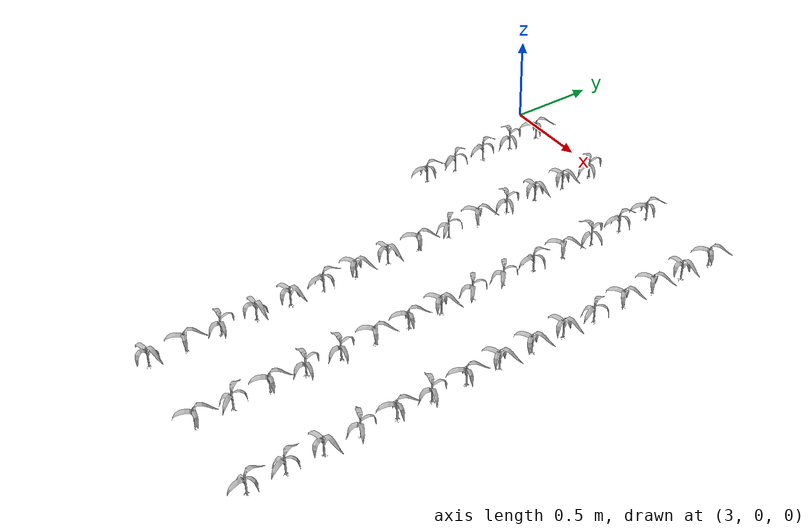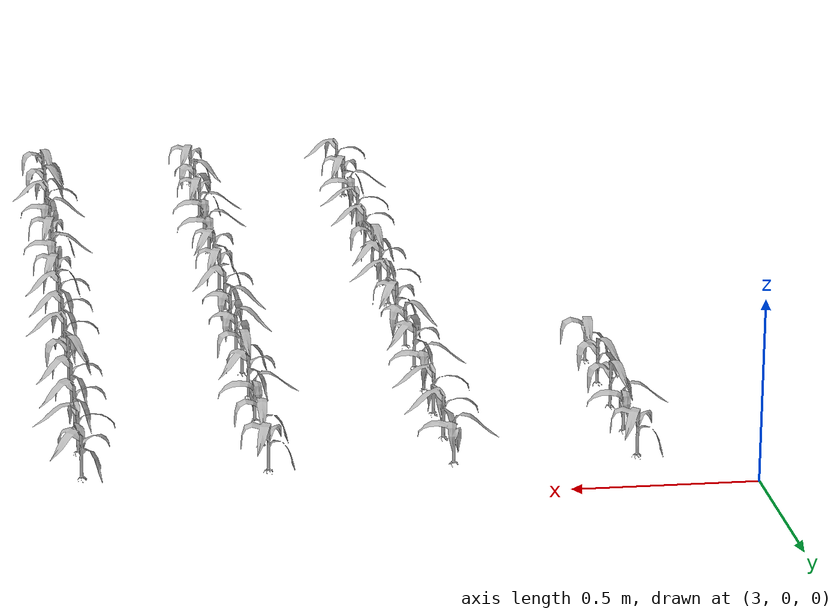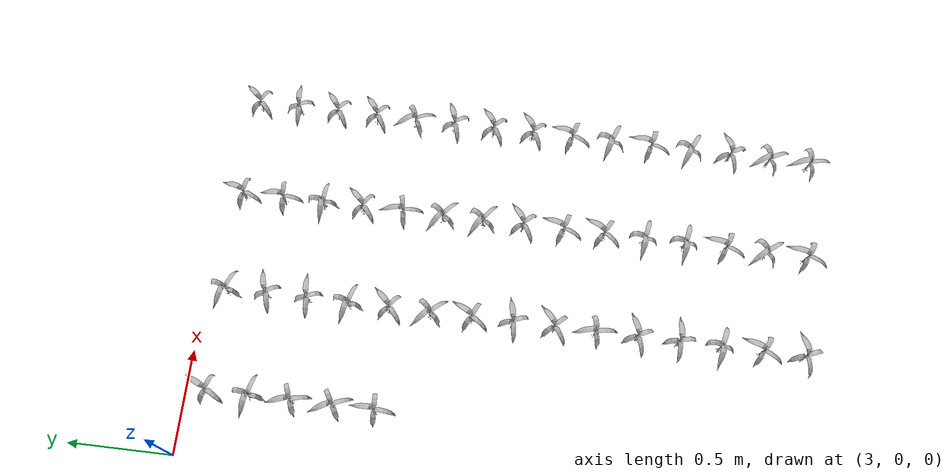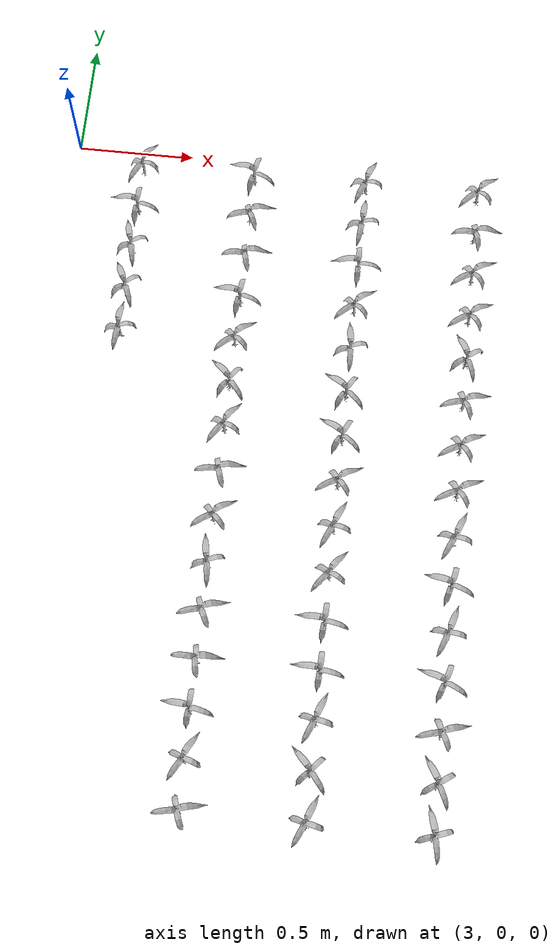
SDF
<sdf version="1.7">
 <world name="default">
  <model name="maize_3.304538114598593_-0.8999999999999995">
   <static>1</static>
   <link name="link">
    <inertial>
     <mass>0.2</mass>
     <inertia>
      <ixx>0.166667</ixx>
      <ixy>0</ixy>
      <ixz>0</ixz>
      <iyy>0.166667</iyy>
      <iyz>0</iyz>
      <izz>0.166667</izz>
     </inertia>
    </inertial>
    <collision name="collision">
     <geometry><mesh><uri>model://corn_3/meshes/corn.dae</uri><scale>0.25 0.25 0.25</scale></mesh></geometry>
     <surface>
      <friction><ode><mu>0</mu><mu2>0</mu2></ode></friction>
      <contact><ode><kp>0</kp><kd>0</kd><max_vel>0</max_vel><min_depth>0.002</min_depth></ode></contact>
     </surface>
    </collision>
    <visual name="visual">
     <geometry><mesh><uri>model://corn_3/meshes/corn.dae</uri><scale>0.25 0.25 0.25</scale></mesh></geometry>
    </visual>
    <velocity_decay><linear>0</linear><angular>0</angular></velocity_decay>
   </link>
   <pose>3.30454 -0.9 0.05 0 -0 1.55204</pose>
  </model>
  <model name="maize_3.304538114598593_-0.7050000000000001">
   <static>1</static>
   <link name="link">
    <inertial>
     <mass>0.2</mass>
     <inertia>
      <ixx>0.166667</ixx>
      <ixy>0</ixy>
      <ixz>0</ixz>
      <iyy>0.166667</iyy>
      <iyz>0</iyz>
      <izz>0.166667</izz>
     </inertia>
    </inertial>
    <collision name="collision">
     <geometry><mesh><uri>model://corn_3/meshes/corn.dae</uri><scale>0.25 0.25 0.25</scale></mesh></geometry>
     <surface>
      <friction><ode><mu>0</mu><mu2>0</mu2></ode></friction>
      <contact><ode><kp>0</kp><kd>0</kd><max_vel>0</max_vel><min_depth>0.002</min_depth></ode></contact>
     </surface>
    </collision>
    <visual name="visual">
     <geometry><mesh><uri>model://corn_3/meshes/corn.dae</uri><scale>0.25 0.25 0.25</scale></mesh></geometry>
    </visual>
    <velocity_decay><linear>0</linear><angular>0</angular></velocity_decay>
   </link>
   <pose>3.30454 -0.705 0.05 0 -0 2.03762</pose>
  </model>
  <model name="maize_3.304538114598593_-0.5099999999999998">
   <static>1</static>
   <link name="link">
    <inertial>
     <mass>0.2</mass>
     <inertia>
      <ixx>0.166667</ixx>
      <ixy>0</ixy>
      <ixz>0</ixz>
      <iyy>0.166667</iyy>
      <iyz>0</iyz>
      <izz>0.166667</izz>
     </inertia>
    </inertial>
    <collision name="collision">
     <geometry><mesh><uri>model://corn_3/meshes/corn.dae</uri><scale>0.25 0.25 0.25</scale></mesh></geometry>
     <surface>
      <friction><ode><mu>0</mu><mu2>0</mu2></ode></friction>
      <contact><ode><kp>0</kp><kd>0</kd><max_vel>0</max_vel><min_depth>0.002</min_depth></ode></contact>
     </surface>
    </collision>
    <visual name="visual">
     <geometry><mesh><uri>model://corn_3/meshes/corn.dae</uri><scale>0.25 0.25 0.25</scale></mesh></geometry>
    </visual>
    <velocity_decay><linear>0</linear><angular>0</angular></velocity_decay>
   </link>
   <pose>3.30454 -0.51 0.05 0 -0 1.86092</pose>
  </model>
  <model name="maize_3.304538114598593_-0.3149999999999995">
   <static>1</static>
   <link name="link">
    <inertial>
     <mass>0.2</mass>
     <inertia>
      <ixx>0.166667</ixx>
      <ixy>0</ixy>
      <ixz>0</ixz>
      <iyy>0.166667</iyy>
      <iyz>0</iyz>
      <izz>0.166667</izz>
     </inertia>
    </inertial>
    <collision name="collision">
     <geometry><mesh><uri>model://corn_3/meshes/corn.dae</uri><scale>0.25 0.25 0.25</scale></mesh></geometry>
     <surface>
      <friction><ode><mu>0</mu><mu2>0</mu2></ode></friction>
      <contact><ode><kp>0</kp><kd>0</kd><max_vel>0</max_vel><min_depth>0.002</min_depth></ode></contact>
     </surface>
    </collision>
    <visual name="visual">
     <geometry><mesh><uri>model://corn_3/meshes/corn.dae</uri><scale>0.25 0.25 0.25</scale></mesh></geometry>
    </visual>
    <velocity_decay><linear>0</linear><angular>0</angular></velocity_decay>
   </link>
   <pose>3.30454 -0.315 0.05 0 -0 2.99369</pose>
  </model>
  <model name="maize_3.304538114598593_-0.1200000000000001">
   <static>1</static>
   <link name="link">
    <inertial>
     <mass>0.2</mass>
     <inertia>
      <ixx>0.166667</ixx>
      <ixy>0</ixy>
      <ixz>0</ixz>
      <iyy>0.166667</iyy>
      <iyz>0</iyz>
      <izz>0.166667</izz>
     </inertia>
    </inertial>
    <collision name="collision">
     <geometry><mesh><uri>model://corn_3/meshes/corn.dae</uri><scale>0.25 0.25 0.25</scale></mesh></geometry>
     <surface>
      <friction><ode><mu>0</mu><mu2>0</mu2></ode></friction>
      <contact><ode><kp>0</kp><kd>0</kd><max_vel>0</max_vel><min_depth>0.002</min_depth></ode></contact>
     </surface>
    </collision>
    <visual name="visual">
     <geometry><mesh><uri>model://corn_3/meshes/corn.dae</uri><scale>0.25 0.25 0.25</scale></mesh></geometry>
    </visual>
    <velocity_decay><linear>0</linear><angular>0</angular></velocity_decay>
   </link>
   <pose>3.30454 -0.12 0.05 0 -0 1.12353</pose>
  </model>
  <model name="maize_3.792272817950934_-2.8499999999999996">
   <static>1</static>
   <link name="link">
    <inertial>
     <mass>0.2</mass>
     <inertia>
      <ixx>0.166667</ixx>
      <ixy>0</ixy>
      <ixz>0</ixz>
      <iyy>0.166667</iyy>
      <iyz>0</iyz>
      <izz>0.166667</izz>
     </inertia>
    </inertial>
    <collision name="collision">
     <geometry><mesh><uri>model://corn_3/meshes/corn.dae</uri><scale>0.25 0.25 0.25</scale></mesh></geometry>
     <surface>
      <friction><ode><mu>0</mu><mu2>0</mu2></ode></friction>
      <contact><ode><kp>0</kp><kd>0</kd><max_vel>0</max_vel><min_depth>0.002</min_depth></ode></contact>
     </surface>
    </collision>
    <visual name="visual">
     <geometry><mesh><uri>model://corn_3/meshes/corn.dae</uri><scale>0.25 0.25 0.25</scale></mesh></geometry>
    </visual>
    <velocity_decay><linear>0</linear><angular>0</angular></velocity_decay>
   </link>
   <pose>3.79227 -2.85 0.05 0 -0 0.293512</pose>
  </model>
  <model name="maize_3.792272817950934_-2.655">
   <static>1</static>
   <link name="link">
    <inertial>
     <mass>0.2</mass>
     <inertia>
      <ixx>0.166667</ixx>
      <ixy>0</ixy>
      <ixz>0</ixz>
      <iyy>0.166667</iyy>
      <iyz>0</iyz>
      <izz>0.166667</izz>
     </inertia>
    </inertial>
    <collision name="collision">
     <geometry><mesh><uri>model://corn_3/meshes/corn.dae</uri><scale>0.25 0.25 0.25</scale></mesh></geometry>
     <surface>
      <friction><ode><mu>0</mu><mu2>0</mu2></ode></friction>
      <contact><ode><kp>0</kp><kd>0</kd><max_vel>0</max_vel><min_depth>0.002</min_depth></ode></contact>
     </surface>
    </collision>
    <visual name="visual">
     <geometry><mesh><uri>model://corn_3/meshes/corn.dae</uri><scale>0.25 0.25 0.25</scale></mesh></geometry>
    </visual>
    <velocity_decay><linear>0</linear><angular>0</angular></velocity_decay>
   </link>
   <pose>3.79227 -2.655 0.05 0 -0 1.14188</pose>
  </model>
  <model name="maize_3.792272817950934_-2.46">
   <static>1</static>
   <link name="link">
    <inertial>
     <mass>0.2</mass>
     <inertia>
      <ixx>0.166667</ixx>
      <ixy>0</ixy>
      <ixz>0</ixz>
      <iyy>0.166667</iyy>
      <iyz>0</iyz>
      <izz>0.166667</izz>
     </inertia>
    </inertial>
    <collision name="collision">
     <geometry><mesh><uri>model://corn_3/meshes/corn.dae</uri><scale>0.25 0.25 0.25</scale></mesh></geometry>
     <surface>
      <friction><ode><mu>0</mu><mu2>0</mu2></ode></friction>
      <contact><ode><kp>0</kp><kd>0</kd><max_vel>0</max_vel><min_depth>0.002</min_depth></ode></contact>
     </surface>
    </collision>
    <visual name="visual">
     <geometry><mesh><uri>model://corn_3/meshes/corn.dae</uri><scale>0.25 0.25 0.25</scale></mesh></geometry>
    </visual>
    <velocity_decay><linear>0</linear><angular>0</angular></velocity_decay>
   </link>
   <pose>3.79227 -2.46 0.05 0 -0 3.02711</pose>
  </model>
  <model name="maize_3.792272817950934_-2.2649999999999997">
   <static>1</static>
   <link name="link">
    <inertial>
     <mass>0.2</mass>
     <inertia>
      <ixx>0.166667</ixx>
      <ixy>0</ixy>
      <ixz>0</ixz>
      <iyy>0.166667</iyy>
      <iyz>0</iyz>
      <izz>0.166667</izz>
     </inertia>
    </inertial>
    <collision name="collision">
     <geometry><mesh><uri>model://corn_3/meshes/corn.dae</uri><scale>0.25 0.25 0.25</scale></mesh></geometry>
     <surface>
      <friction><ode><mu>0</mu><mu2>0</mu2></ode></friction>
      <contact><ode><kp>0</kp><kd>0</kd><max_vel>0</max_vel><min_depth>0.002</min_depth></ode></contact>
     </surface>
    </collision>
    <visual name="visual">
     <geometry><mesh><uri>model://corn_3/meshes/corn.dae</uri><scale>0.25 0.25 0.25</scale></mesh></geometry>
    </visual>
    <velocity_decay><linear>0</linear><angular>0</angular></velocity_decay>
   </link>
   <pose>3.79227 -2.265 0.05 0 -0 0.076422</pose>
  </model>
  <model name="maize_3.792272817950934_-2.07">
   <static>1</static>
   <link name="link">
    <inertial>
     <mass>0.2</mass>
     <inertia>
      <ixx>0.166667</ixx>
      <ixy>0</ixy>
      <ixz>0</ixz>
      <iyy>0.166667</iyy>
      <iyz>0</iyz>
      <izz>0.166667</izz>
     </inertia>
    </inertial>
    <collision name="collision">
     <geometry><mesh><uri>model://corn_3/meshes/corn.dae</uri><scale>0.25 0.25 0.25</scale></mesh></geometry>
     <surface>
      <friction><ode><mu>0</mu><mu2>0</mu2></ode></friction>
      <contact><ode><kp>0</kp><kd>0</kd><max_vel>0</max_vel><min_depth>0.002</min_depth></ode></contact>
     </surface>
    </collision>
    <visual name="visual">
     <geometry><mesh><uri>model://corn_3/meshes/corn.dae</uri><scale>0.25 0.25 0.25</scale></mesh></geometry>
    </visual>
    <velocity_decay><linear>0</linear><angular>0</angular></velocity_decay>
   </link>
   <pose>3.79227 -2.07 0.05 0 -0 0.354118</pose>
  </model>
  <model name="maize_3.792272817950934_-1.8749999999999996">
   <static>1</static>
   <link name="link">
    <inertial>
     <mass>0.2</mass>
     <inertia>
      <ixx>0.166667</ixx>
      <ixy>0</ixy>
      <ixz>0</ixz>
      <iyy>0.166667</iyy>
      <iyz>0</iyz>
      <izz>0.166667</izz>
     </inertia>
    </inertial>
    <collision name="collision">
     <geometry><mesh><uri>model://corn_3/meshes/corn.dae</uri><scale>0.25 0.25 0.25</scale></mesh></geometry>
     <surface>
      <friction><ode><mu>0</mu><mu2>0</mu2></ode></friction>
      <contact><ode><kp>0</kp><kd>0</kd><max_vel>0</max_vel><min_depth>0.002</min_depth></ode></contact>
     </surface>
    </collision>
    <visual name="visual">
     <geometry><mesh><uri>model://corn_3/meshes/corn.dae</uri><scale>0.25 0.25 0.25</scale></mesh></geometry>
    </visual>
    <velocity_decay><linear>0</linear><angular>0</angular></velocity_decay>
   </link>
   <pose>3.79227 -1.875 0.05 0 -0 1.77309</pose>
  </model>
  <model name="maize_3.792272817950934_-1.6799999999999997">
   <static>1</static>
   <link name="link">
    <inertial>
     <mass>0.2</mass>
     <inertia>
      <ixx>0.166667</ixx>
      <ixy>0</ixy>
      <ixz>0</ixz>
      <iyy>0.166667</iyy>
      <iyz>0</iyz>
      <izz>0.166667</izz>
     </inertia>
    </inertial>
    <collision name="collision">
     <geometry><mesh><uri>model://corn_3/meshes/corn.dae</uri><scale>0.25 0.25 0.25</scale></mesh></geometry>
     <surface>
      <friction><ode><mu>0</mu><mu2>0</mu2></ode></friction>
      <contact><ode><kp>0</kp><kd>0</kd><max_vel>0</max_vel><min_depth>0.002</min_depth></ode></contact>
     </surface>
    </collision>
    <visual name="visual">
     <geometry><mesh><uri>model://corn_3/meshes/corn.dae</uri><scale>0.25 0.25 0.25</scale></mesh></geometry>
    </visual>
    <velocity_decay><linear>0</linear><angular>0</angular></velocity_decay>
   </link>
   <pose>3.79227 -1.68 0.05 0 -0 0.66652</pose>
  </model>
  <model name="maize_3.792272817950934_-1.4849999999999999">
   <static>1</static>
   <link name="link">
    <inertial>
     <mass>0.2</mass>
     <inertia>
      <ixx>0.166667</ixx>
      <ixy>0</ixy>
      <ixz>0</ixz>
      <iyy>0.166667</iyy>
      <iyz>0</iyz>
      <izz>0.166667</izz>
     </inertia>
    </inertial>
    <collision name="collision">
     <geometry><mesh><uri>model://corn_3/meshes/corn.dae</uri><scale>0.25 0.25 0.25</scale></mesh></geometry>
     <surface>
      <friction><ode><mu>0</mu><mu2>0</mu2></ode></friction>
      <contact><ode><kp>0</kp><kd>0</kd><max_vel>0</max_vel><min_depth>0.002</min_depth></ode></contact>
     </surface>
    </collision>
    <visual name="visual">
     <geometry><mesh><uri>model://corn_3/meshes/corn.dae</uri><scale>0.25 0.25 0.25</scale></mesh></geometry>
    </visual>
    <velocity_decay><linear>0</linear><angular>0</angular></velocity_decay>
   </link>
   <pose>3.79227 -1.485 0.05 0 -0 0.221361</pose>
  </model>
  <model name="maize_3.792272817950934_-1.2899999999999996">
   <static>1</static>
   <link name="link">
    <inertial>
     <mass>0.2</mass>
     <inertia>
      <ixx>0.166667</ixx>
      <ixy>0</ixy>
      <ixz>0</ixz>
      <iyy>0.166667</iyy>
      <iyz>0</iyz>
      <izz>0.166667</izz>
     </inertia>
    </inertial>
    <collision name="collision">
     <geometry><mesh><uri>model://corn_3/meshes/corn.dae</uri><scale>0.25 0.25 0.25</scale></mesh></geometry>
     <surface>
      <friction><ode><mu>0</mu><mu2>0</mu2></ode></friction>
      <contact><ode><kp>0</kp><kd>0</kd><max_vel>0</max_vel><min_depth>0.002</min_depth></ode></contact>
     </surface>
    </collision>
    <visual name="visual">
     <geometry><mesh><uri>model://corn_3/meshes/corn.dae</uri><scale>0.25 0.25 0.25</scale></mesh></geometry>
    </visual>
    <velocity_decay><linear>0</linear><angular>0</angular></velocity_decay>
   </link>
   <pose>3.79227 -1.29 0.05 0 -0 1.02754</pose>
  </model>
  <model name="maize_3.792272817950934_-1.0949999999999998">
   <static>1</static>
   <link name="link">
    <inertial>
     <mass>0.2</mass>
     <inertia>
      <ixx>0.166667</ixx>
      <ixy>0</ixy>
      <ixz>0</ixz>
      <iyy>0.166667</iyy>
      <iyz>0</iyz>
      <izz>0.166667</izz>
     </inertia>
    </inertial>
    <collision name="collision">
     <geometry><mesh><uri>model://corn_3/meshes/corn.dae</uri><scale>0.25 0.25 0.25</scale></mesh></geometry>
     <surface>
      <friction><ode><mu>0</mu><mu2>0</mu2></ode></friction>
      <contact><ode><kp>0</kp><kd>0</kd><max_vel>0</max_vel><min_depth>0.002</min_depth></ode></contact>
     </surface>
    </collision>
    <visual name="visual">
     <geometry><mesh><uri>model://corn_3/meshes/corn.dae</uri><scale>0.25 0.25 0.25</scale></mesh></geometry>
    </visual>
    <velocity_decay><linear>0</linear><angular>0</angular></velocity_decay>
   </link>
   <pose>3.79227 -1.095 0.05 0 -0 2.35988</pose>
  </model>
  <model name="maize_3.792272817950934_-0.8999999999999995">
   <static>1</static>
   <link name="link">
    <inertial>
     <mass>0.2</mass>
     <inertia>
      <ixx>0.166667</ixx>
      <ixy>0</ixy>
      <ixz>0</ixz>
      <iyy>0.166667</iyy>
      <iyz>0</iyz>
      <izz>0.166667</izz>
     </inertia>
    </inertial>
    <collision name="collision">
     <geometry><mesh><uri>model://corn_3/meshes/corn.dae</uri><scale>0.25 0.25 0.25</scale></mesh></geometry>
     <surface>
      <friction><ode><mu>0</mu><mu2>0</mu2></ode></friction>
      <contact><ode><kp>0</kp><kd>0</kd><max_vel>0</max_vel><min_depth>0.002</min_depth></ode></contact>
     </surface>
    </collision>
    <visual name="visual">
     <geometry><mesh><uri>model://corn_3/meshes/corn.dae</uri><scale>0.25 0.25 0.25</scale></mesh></geometry>
    </visual>
    <velocity_decay><linear>0</linear><angular>0</angular></velocity_decay>
   </link>
   <pose>3.79227 -0.9 0.05 0 -0 0.770531</pose>
  </model>
  <model name="maize_3.792272817950934_-0.7050000000000001">
   <static>1</static>
   <link name="link">
    <inertial>
     <mass>0.2</mass>
     <inertia>
      <ixx>0.166667</ixx>
      <ixy>0</ixy>
      <ixz>0</ixz>
      <iyy>0.166667</iyy>
      <iyz>0</iyz>
      <izz>0.166667</izz>
     </inertia>
    </inertial>
    <collision name="collision">
     <geometry><mesh><uri>model://corn_3/meshes/corn.dae</uri><scale>0.25 0.25 0.25</scale></mesh></geometry>
     <surface>
      <friction><ode><mu>0</mu><mu2>0</mu2></ode></friction>
      <contact><ode><kp>0</kp><kd>0</kd><max_vel>0</max_vel><min_depth>0.002</min_depth></ode></contact>
     </surface>
    </collision>
    <visual name="visual">
     <geometry><mesh><uri>model://corn_3/meshes/corn.dae</uri><scale>0.25 0.25 0.25</scale></mesh></geometry>
    </visual>
    <velocity_decay><linear>0</linear><angular>0</angular></velocity_decay>
   </link>
   <pose>3.79227 -0.705 0.05 0 -0 2.92849</pose>
  </model>
  <model name="maize_3.792272817950934_-0.5099999999999998">
   <static>1</static>
   <link name="link">
    <inertial>
     <mass>0.2</mass>
     <inertia>
      <ixx>0.166667</ixx>
      <ixy>0</ixy>
      <ixz>0</ixz>
      <iyy>0.166667</iyy>
      <iyz>0</iyz>
      <izz>0.166667</izz>
     </inertia>
    </inertial>
    <collision name="collision">
     <geometry><mesh><uri>model://corn_3/meshes/corn.dae</uri><scale>0.25 0.25 0.25</scale></mesh></geometry>
     <surface>
      <friction><ode><mu>0</mu><mu2>0</mu2></ode></friction>
      <contact><ode><kp>0</kp><kd>0</kd><max_vel>0</max_vel><min_depth>0.002</min_depth></ode></contact>
     </surface>
    </collision>
    <visual name="visual">
     <geometry><mesh><uri>model://corn_3/meshes/corn.dae</uri><scale>0.25 0.25 0.25</scale></mesh></geometry>
    </visual>
    <velocity_decay><linear>0</linear><angular>0</angular></velocity_decay>
   </link>
   <pose>3.79227 -0.51 0.05 0 -0 0.167231</pose>
  </model>
  <model name="maize_3.792272817950934_-0.3149999999999995">
   <static>1</static>
   <link name="link">
    <inertial>
     <mass>0.2</mass>
     <inertia>
      <ixx>0.166667</ixx>
      <ixy>0</ixy>
      <ixz>0</ixz>
      <iyy>0.166667</iyy>
      <iyz>0</iyz>
      <izz>0.166667</izz>
     </inertia>
    </inertial>
    <collision name="collision">
     <geometry><mesh><uri>model://corn_3/meshes/corn.dae</uri><scale>0.25 0.25 0.25</scale></mesh></geometry>
     <surface>
      <friction><ode><mu>0</mu><mu2>0</mu2></ode></friction>
      <contact><ode><kp>0</kp><kd>0</kd><max_vel>0</max_vel><min_depth>0.002</min_depth></ode></contact>
     </surface>
    </collision>
    <visual name="visual">
     <geometry><mesh><uri>model://corn_3/meshes/corn.dae</uri><scale>0.25 0.25 0.25</scale></mesh></geometry>
    </visual>
    <velocity_decay><linear>0</linear><angular>0</angular></velocity_decay>
   </link>
   <pose>3.79227 -0.315 0.05 0 -0 0.338357</pose>
  </model>
  <model name="maize_3.792272817950934_-0.1200000000000001">
   <static>1</static>
   <link name="link">
    <inertial>
     <mass>0.2</mass>
     <inertia>
      <ixx>0.166667</ixx>
      <ixy>0</ixy>
      <ixz>0</ixz>
      <iyy>0.166667</iyy>
      <iyz>0</iyz>
      <izz>0.166667</izz>
     </inertia>
    </inertial>
    <collision name="collision">
     <geometry><mesh><uri>model://corn_3/meshes/corn.dae</uri><scale>0.25 0.25 0.25</scale></mesh></geometry>
     <surface>
      <friction><ode><mu>0</mu><mu2>0</mu2></ode></friction>
      <contact><ode><kp>0</kp><kd>0</kd><max_vel>0</max_vel><min_depth>0.002</min_depth></ode></contact>
     </surface>
    </collision>
    <visual name="visual">
     <geometry><mesh><uri>model://corn_3/meshes/corn.dae</uri><scale>0.25 0.25 0.25</scale></mesh></geometry>
    </visual>
    <velocity_decay><linear>0</linear><angular>0</angular></velocity_decay>
   </link>
   <pose>3.79227 -0.12 0.05 0 -0 2.83621</pose>
  </model>
  <model name="maize_4.279271472945556_-2.8499999999999996">
   <static>1</static>
   <link name="link">
    <inertial>
     <mass>0.2</mass>
     <inertia>
      <ixx>0.166667</ixx>
      <ixy>0</ixy>
      <ixz>0</ixz>
      <iyy>0.166667</iyy>
      <iyz>0</iyz>
      <izz>0.166667</izz>
     </inertia>
    </inertial>
    <collision name="collision">
     <geometry><mesh><uri>model://corn_3/meshes/corn.dae</uri><scale>0.25 0.25 0.25</scale></mesh></geometry>
     <surface>
      <friction><ode><mu>0</mu><mu2>0</mu2></ode></friction>
      <contact><ode><kp>0</kp><kd>0</kd><max_vel>0</max_vel><min_depth>0.002</min_depth></ode></contact>
     </surface>
    </collision>
    <visual name="visual">
     <geometry><mesh><uri>model://corn_3/meshes/corn.dae</uri><scale>0.25 0.25 0.25</scale></mesh></geometry>
    </visual>
    <velocity_decay><linear>0</linear><angular>0</angular></velocity_decay>
   </link>
   <pose>4.27927 -2.85 0.05 0 -0 1.24433</pose>
  </model>
  <model name="maize_4.279271472945556_-2.655">
   <static>1</static>
   <link name="link">
    <inertial>
     <mass>0.2</mass>
     <inertia>
      <ixx>0.166667</ixx>
      <ixy>0</ixy>
      <ixz>0</ixz>
      <iyy>0.166667</iyy>
      <iyz>0</iyz>
      <izz>0.166667</izz>
     </inertia>
    </inertial>
    <collision name="collision">
     <geometry><mesh><uri>model://corn_3/meshes/corn.dae</uri><scale>0.25 0.25 0.25</scale></mesh></geometry>
     <surface>
      <friction><ode><mu>0</mu><mu2>0</mu2></ode></friction>
      <contact><ode><kp>0</kp><kd>0</kd><max_vel>0</max_vel><min_depth>0.002</min_depth></ode></contact>
     </surface>
    </collision>
    <visual name="visual">
     <geometry><mesh><uri>model://corn_3/meshes/corn.dae</uri><scale>0.25 0.25 0.25</scale></mesh></geometry>
    </visual>
    <velocity_decay><linear>0</linear><angular>0</angular></velocity_decay>
   </link>
   <pose>4.27927 -2.655 0.05 0 -0 2.33195</pose>
  </model>
  <model name="maize_4.279271472945556_-2.46">
   <static>1</static>
   <link name="link">
    <inertial>
     <mass>0.2</mass>
     <inertia>
      <ixx>0.166667</ixx>
      <ixy>0</ixy>
      <ixz>0</ixz>
      <iyy>0.166667</iyy>
      <iyz>0</iyz>
      <izz>0.166667</izz>
     </inertia>
    </inertial>
    <collision name="collision">
     <geometry><mesh><uri>model://corn_3/meshes/corn.dae</uri><scale>0.25 0.25 0.25</scale></mesh></geometry>
     <surface>
      <friction><ode><mu>0</mu><mu2>0</mu2></ode></friction>
      <contact><ode><kp>0</kp><kd>0</kd><max_vel>0</max_vel><min_depth>0.002</min_depth></ode></contact>
     </surface>
    </collision>
    <visual name="visual">
     <geometry><mesh><uri>model://corn_3/meshes/corn.dae</uri><scale>0.25 0.25 0.25</scale></mesh></geometry>
    </visual>
    <velocity_decay><linear>0</linear><angular>0</angular></velocity_decay>
   </link>
   <pose>4.27927 -2.46 0.05 0 -0 1.25366</pose>
  </model>
  <model name="maize_4.279271472945556_-2.2649999999999997">
   <static>1</static>
   <link name="link">
    <inertial>
     <mass>0.2</mass>
     <inertia>
      <ixx>0.166667</ixx>
      <ixy>0</ixy>
      <ixz>0</ixz>
      <iyy>0.166667</iyy>
      <iyz>0</iyz>
      <izz>0.166667</izz>
     </inertia>
    </inertial>
    <collision name="collision">
     <geometry><mesh><uri>model://corn_3/meshes/corn.dae</uri><scale>0.25 0.25 0.25</scale></mesh></geometry>
     <surface>
      <friction><ode><mu>0</mu><mu2>0</mu2></ode></friction>
      <contact><ode><kp>0</kp><kd>0</kd><max_vel>0</max_vel><min_depth>0.002</min_depth></ode></contact>
     </surface>
    </collision>
    <visual name="visual">
     <geometry><mesh><uri>model://corn_3/meshes/corn.dae</uri><scale>0.25 0.25 0.25</scale></mesh></geometry>
    </visual>
    <velocity_decay><linear>0</linear><angular>0</angular></velocity_decay>
   </link>
   <pose>4.27927 -2.265 0.05 0 -0 3.06732</pose>
  </model>
  <model name="maize_4.279271472945556_-2.07">
   <static>1</static>
   <link name="link">
    <inertial>
     <mass>0.2</mass>
     <inertia>
      <ixx>0.166667</ixx>
      <ixy>0</ixy>
      <ixz>0</ixz>
      <iyy>0.166667</iyy>
      <iyz>0</iyz>
      <izz>0.166667</izz>
     </inertia>
    </inertial>
    <collision name="collision">
     <geometry><mesh><uri>model://corn_3/meshes/corn.dae</uri><scale>0.25 0.25 0.25</scale></mesh></geometry>
     <surface>
      <friction><ode><mu>0</mu><mu2>0</mu2></ode></friction>
      <contact><ode><kp>0</kp><kd>0</kd><max_vel>0</max_vel><min_depth>0.002</min_depth></ode></contact>
     </surface>
    </collision>
    <visual name="visual">
     <geometry><mesh><uri>model://corn_3/meshes/corn.dae</uri><scale>0.25 0.25 0.25</scale></mesh></geometry>
    </visual>
    <velocity_decay><linear>0</linear><angular>0</angular></velocity_decay>
   </link>
   <pose>4.27927 -2.07 0.05 0 -0 3.04357</pose>
  </model>
  <model name="maize_4.279271472945556_-1.8749999999999996">
   <static>1</static>
   <link name="link">
    <inertial>
     <mass>0.2</mass>
     <inertia>
      <ixx>0.166667</ixx>
      <ixy>0</ixy>
      <ixz>0</ixz>
      <iyy>0.166667</iyy>
      <iyz>0</iyz>
      <izz>0.166667</izz>
     </inertia>
    </inertial>
    <collision name="collision">
     <geometry><mesh><uri>model://corn_3/meshes/corn.dae</uri><scale>0.25 0.25 0.25</scale></mesh></geometry>
     <surface>
      <friction><ode><mu>0</mu><mu2>0</mu2></ode></friction>
      <contact><ode><kp>0</kp><kd>0</kd><max_vel>0</max_vel><min_depth>0.002</min_depth></ode></contact>
     </surface>
    </collision>
    <visual name="visual">
     <geometry><mesh><uri>model://corn_3/meshes/corn.dae</uri><scale>0.25 0.25 0.25</scale></mesh></geometry>
    </visual>
    <velocity_decay><linear>0</linear><angular>0</angular></velocity_decay>
   </link>
   <pose>4.27927 -1.875 0.05 0 -0 0.988459</pose>
  </model>
  <model name="maize_4.279271472945556_-1.6799999999999997">
   <static>1</static>
   <link name="link">
    <inertial>
     <mass>0.2</mass>
     <inertia>
      <ixx>0.166667</ixx>
      <ixy>0</ixy>
      <ixz>0</ixz>
      <iyy>0.166667</iyy>
      <iyz>0</iyz>
      <izz>0.166667</izz>
     </inertia>
    </inertial>
    <collision name="collision">
     <geometry><mesh><uri>model://corn_3/meshes/corn.dae</uri><scale>0.25 0.25 0.25</scale></mesh></geometry>
     <surface>
      <friction><ode><mu>0</mu><mu2>0</mu2></ode></friction>
      <contact><ode><kp>0</kp><kd>0</kd><max_vel>0</max_vel><min_depth>0.002</min_depth></ode></contact>
     </surface>
    </collision>
    <visual name="visual">
     <geometry><mesh><uri>model://corn_3/meshes/corn.dae</uri><scale>0.25 0.25 0.25</scale></mesh></geometry>
    </visual>
    <velocity_decay><linear>0</linear><angular>0</angular></velocity_decay>
   </link>
   <pose>4.27927 -1.68 0.05 0 -0 1.20923</pose>
  </model>
  <model name="maize_4.279271472945556_-1.4849999999999999">
   <static>1</static>
   <link name="link">
    <inertial>
     <mass>0.2</mass>
     <inertia>
      <ixx>0.166667</ixx>
      <ixy>0</ixy>
      <ixz>0</ixz>
      <iyy>0.166667</iyy>
      <iyz>0</iyz>
      <izz>0.166667</izz>
     </inertia>
    </inertial>
    <collision name="collision">
     <geometry><mesh><uri>model://corn_3/meshes/corn.dae</uri><scale>0.25 0.25 0.25</scale></mesh></geometry>
     <surface>
      <friction><ode><mu>0</mu><mu2>0</mu2></ode></friction>
      <contact><ode><kp>0</kp><kd>0</kd><max_vel>0</max_vel><min_depth>0.002</min_depth></ode></contact>
     </surface>
    </collision>
    <visual name="visual">
     <geometry><mesh><uri>model://corn_3/meshes/corn.dae</uri><scale>0.25 0.25 0.25</scale></mesh></geometry>
    </visual>
    <velocity_decay><linear>0</linear><angular>0</angular></velocity_decay>
   </link>
   <pose>4.27927 -1.485 0.05 0 -0 0.602022</pose>
  </model>
  <model name="maize_4.279271472945556_-1.2899999999999996">
   <static>1</static>
   <link name="link">
    <inertial>
     <mass>0.2</mass>
     <inertia>
      <ixx>0.166667</ixx>
      <ixy>0</ixy>
      <ixz>0</ixz>
      <iyy>0.166667</iyy>
      <iyz>0</iyz>
      <izz>0.166667</izz>
     </inertia>
    </inertial>
    <collision name="collision">
     <geometry><mesh><uri>model://corn_3/meshes/corn.dae</uri><scale>0.25 0.25 0.25</scale></mesh></geometry>
     <surface>
      <friction><ode><mu>0</mu><mu2>0</mu2></ode></friction>
      <contact><ode><kp>0</kp><kd>0</kd><max_vel>0</max_vel><min_depth>0.002</min_depth></ode></contact>
     </surface>
    </collision>
    <visual name="visual">
     <geometry><mesh><uri>model://corn_3/meshes/corn.dae</uri><scale>0.25 0.25 0.25</scale></mesh></geometry>
    </visual>
    <velocity_decay><linear>0</linear><angular>0</angular></velocity_decay>
   </link>
   <pose>4.27927 -1.29 0.05 0 -0 2.57943</pose>
  </model>
  <model name="maize_4.279271472945556_-1.0949999999999998">
   <static>1</static>
   <link name="link">
    <inertial>
     <mass>0.2</mass>
     <inertia>
      <ixx>0.166667</ixx>
      <ixy>0</ixy>
      <ixz>0</ixz>
      <iyy>0.166667</iyy>
      <iyz>0</iyz>
      <izz>0.166667</izz>
     </inertia>
    </inertial>
    <collision name="collision">
     <geometry><mesh><uri>model://corn_3/meshes/corn.dae</uri><scale>0.25 0.25 0.25</scale></mesh></geometry>
     <surface>
      <friction><ode><mu>0</mu><mu2>0</mu2></ode></friction>
      <contact><ode><kp>0</kp><kd>0</kd><max_vel>0</max_vel><min_depth>0.002</min_depth></ode></contact>
     </surface>
    </collision>
    <visual name="visual">
     <geometry><mesh><uri>model://corn_3/meshes/corn.dae</uri><scale>0.25 0.25 0.25</scale></mesh></geometry>
    </visual>
    <velocity_decay><linear>0</linear><angular>0</angular></velocity_decay>
   </link>
   <pose>4.27927 -1.095 0.05 0 -0 2.52089</pose>
  </model>
  <model name="maize_4.279271472945556_-0.8999999999999995">
   <static>1</static>
   <link name="link">
    <inertial>
     <mass>0.2</mass>
     <inertia>
      <ixx>0.166667</ixx>
      <ixy>0</ixy>
      <ixz>0</ixz>
      <iyy>0.166667</iyy>
      <iyz>0</iyz>
      <izz>0.166667</izz>
     </inertia>
    </inertial>
    <collision name="collision">
     <geometry><mesh><uri>model://corn_3/meshes/corn.dae</uri><scale>0.25 0.25 0.25</scale></mesh></geometry>
     <surface>
      <friction><ode><mu>0</mu><mu2>0</mu2></ode></friction>
      <contact><ode><kp>0</kp><kd>0</kd><max_vel>0</max_vel><min_depth>0.002</min_depth></ode></contact>
     </surface>
    </collision>
    <visual name="visual">
     <geometry><mesh><uri>model://corn_3/meshes/corn.dae</uri><scale>0.25 0.25 0.25</scale></mesh></geometry>
    </visual>
    <velocity_decay><linear>0</linear><angular>0</angular></velocity_decay>
   </link>
   <pose>4.27927 -0.9 0.05 0 -0 1.70729</pose>
  </model>
  <model name="maize_4.279271472945556_-0.7050000000000001">
   <static>1</static>
   <link name="link">
    <inertial>
     <mass>0.2</mass>
     <inertia>
      <ixx>0.166667</ixx>
      <ixy>0</ixy>
      <ixz>0</ixz>
      <iyy>0.166667</iyy>
      <iyz>0</iyz>
      <izz>0.166667</izz>
     </inertia>
    </inertial>
    <collision name="collision">
     <geometry><mesh><uri>model://corn_3/meshes/corn.dae</uri><scale>0.25 0.25 0.25</scale></mesh></geometry>
     <surface>
      <friction><ode><mu>0</mu><mu2>0</mu2></ode></friction>
      <contact><ode><kp>0</kp><kd>0</kd><max_vel>0</max_vel><min_depth>0.002</min_depth></ode></contact>
     </surface>
    </collision>
    <visual name="visual">
     <geometry><mesh><uri>model://corn_3/meshes/corn.dae</uri><scale>0.25 0.25 0.25</scale></mesh></geometry>
    </visual>
    <velocity_decay><linear>0</linear><angular>0</angular></velocity_decay>
   </link>
   <pose>4.27927 -0.705 0.05 0 -0 0.765183</pose>
  </model>
  <model name="maize_4.279271472945556_-0.5099999999999998">
   <static>1</static>
   <link name="link">
    <inertial>
     <mass>0.2</mass>
     <inertia>
      <ixx>0.166667</ixx>
      <ixy>0</ixy>
      <ixz>0</ixz>
      <iyy>0.166667</iyy>
      <iyz>0</iyz>
      <izz>0.166667</izz>
     </inertia>
    </inertial>
    <collision name="collision">
     <geometry><mesh><uri>model://corn_3/meshes/corn.dae</uri><scale>0.25 0.25 0.25</scale></mesh></geometry>
     <surface>
      <friction><ode><mu>0</mu><mu2>0</mu2></ode></friction>
      <contact><ode><kp>0</kp><kd>0</kd><max_vel>0</max_vel><min_depth>0.002</min_depth></ode></contact>
     </surface>
    </collision>
    <visual name="visual">
     <geometry><mesh><uri>model://corn_3/meshes/corn.dae</uri><scale>0.25 0.25 0.25</scale></mesh></geometry>
    </visual>
    <velocity_decay><linear>0</linear><angular>0</angular></velocity_decay>
   </link>
   <pose>4.27927 -0.51 0.05 0 -0 3.13031</pose>
  </model>
  <model name="maize_4.279271472945556_-0.3149999999999995">
   <static>1</static>
   <link name="link">
    <inertial>
     <mass>0.2</mass>
     <inertia>
      <ixx>0.166667</ixx>
      <ixy>0</ixy>
      <ixz>0</ixz>
      <iyy>0.166667</iyy>
      <iyz>0</iyz>
      <izz>0.166667</izz>
     </inertia>
    </inertial>
    <collision name="collision">
     <geometry><mesh><uri>model://corn_3/meshes/corn.dae</uri><scale>0.25 0.25 0.25</scale></mesh></geometry>
     <surface>
      <friction><ode><mu>0</mu><mu2>0</mu2></ode></friction>
      <contact><ode><kp>0</kp><kd>0</kd><max_vel>0</max_vel><min_depth>0.002</min_depth></ode></contact>
     </surface>
    </collision>
    <visual name="visual">
     <geometry><mesh><uri>model://corn_3/meshes/corn.dae</uri><scale>0.25 0.25 0.25</scale></mesh></geometry>
    </visual>
    <velocity_decay><linear>0</linear><angular>0</angular></velocity_decay>
   </link>
   <pose>4.27927 -0.315 0.05 0 -0 1.54366</pose>
  </model>
  <model name="maize_4.279271472945556_-0.1200000000000001">
   <static>1</static>
   <link name="link">
    <inertial>
     <mass>0.2</mass>
     <inertia>
      <ixx>0.166667</ixx>
      <ixy>0</ixy>
      <ixz>0</ixz>
      <iyy>0.166667</iyy>
      <iyz>0</iyz>
      <izz>0.166667</izz>
     </inertia>
    </inertial>
    <collision name="collision">
     <geometry><mesh><uri>model://corn_3/meshes/corn.dae</uri><scale>0.25 0.25 0.25</scale></mesh></geometry>
     <surface>
      <friction><ode><mu>0</mu><mu2>0</mu2></ode></friction>
      <contact><ode><kp>0</kp><kd>0</kd><max_vel>0</max_vel><min_depth>0.002</min_depth></ode></contact>
     </surface>
    </collision>
    <visual name="visual">
     <geometry><mesh><uri>model://corn_3/meshes/corn.dae</uri><scale>0.25 0.25 0.25</scale></mesh></geometry>
    </visual>
    <velocity_decay><linear>0</linear><angular>0</angular></velocity_decay>
   </link>
   <pose>4.27927 -0.12 0.05 0 -0 1.26517</pose>
  </model>
  <model name="maize_4.765534909304227_-2.8499999999999996">
   <static>1</static>
   <link name="link">
    <inertial>
     <mass>0.2</mass>
     <inertia>
      <ixx>0.166667</ixx>
      <ixy>0</ixy>
      <ixz>0</ixz>
      <iyy>0.166667</iyy>
      <iyz>0</iyz>
      <izz>0.166667</izz>
     </inertia>
    </inertial>
    <collision name="collision">
     <geometry><mesh><uri>model://corn_3/meshes/corn.dae</uri><scale>0.25 0.25 0.25</scale></mesh></geometry>
     <surface>
      <friction><ode><mu>0</mu><mu2>0</mu2></ode></friction>
      <contact><ode><kp>0</kp><kd>0</kd><max_vel>0</max_vel><min_depth>0.002</min_depth></ode></contact>
     </surface>
    </collision>
    <visual name="visual">
     <geometry><mesh><uri>model://corn_3/meshes/corn.dae</uri><scale>0.25 0.25 0.25</scale></mesh></geometry>
    </visual>
    <velocity_decay><linear>0</linear><angular>0</angular></velocity_decay>
   </link>
   <pose>4.76553 -2.85 0.05 0 -0 1.84893</pose>
  </model>
  <model name="maize_4.765534909304227_-2.655">
   <static>1</static>
   <link name="link">
    <inertial>
     <mass>0.2</mass>
     <inertia>
      <ixx>0.166667</ixx>
      <ixy>0</ixy>
      <ixz>0</ixz>
      <iyy>0.166667</iyy>
      <iyz>0</iyz>
      <izz>0.166667</izz>
     </inertia>
    </inertial>
    <collision name="collision">
     <geometry><mesh><uri>model://corn_3/meshes/corn.dae</uri><scale>0.25 0.25 0.25</scale></mesh></geometry>
     <surface>
      <friction><ode><mu>0</mu><mu2>0</mu2></ode></friction>
      <contact><ode><kp>0</kp><kd>0</kd><max_vel>0</max_vel><min_depth>0.002</min_depth></ode></contact>
     </surface>
    </collision>
    <visual name="visual">
     <geometry><mesh><uri>model://corn_3/meshes/corn.dae</uri><scale>0.25 0.25 0.25</scale></mesh></geometry>
    </visual>
    <velocity_decay><linear>0</linear><angular>0</angular></velocity_decay>
   </link>
   <pose>4.76553 -2.655 0.05 0 -0 2.1076</pose>
  </model>
  <model name="maize_4.765534909304227_-2.46">
   <static>1</static>
   <link name="link">
    <inertial>
     <mass>0.2</mass>
     <inertia>
      <ixx>0.166667</ixx>
      <ixy>0</ixy>
      <ixz>0</ixz>
      <iyy>0.166667</iyy>
      <iyz>0</iyz>
      <izz>0.166667</izz>
     </inertia>
    </inertial>
    <collision name="collision">
     <geometry><mesh><uri>model://corn_3/meshes/corn.dae</uri><scale>0.25 0.25 0.25</scale></mesh></geometry>
     <surface>
      <friction><ode><mu>0</mu><mu2>0</mu2></ode></friction>
      <contact><ode><kp>0</kp><kd>0</kd><max_vel>0</max_vel><min_depth>0.002</min_depth></ode></contact>
     </surface>
    </collision>
    <visual name="visual">
     <geometry><mesh><uri>model://corn_3/meshes/corn.dae</uri><scale>0.25 0.25 0.25</scale></mesh></geometry>
    </visual>
    <velocity_decay><linear>0</linear><angular>0</angular></velocity_decay>
   </link>
   <pose>4.76553 -2.46 0.05 0 -0 0.351369</pose>
  </model>
  <model name="maize_4.765534909304227_-2.2649999999999997">
   <static>1</static>
   <link name="link">
    <inertial>
     <mass>0.2</mass>
     <inertia>
      <ixx>0.166667</ixx>
      <ixy>0</ixy>
      <ixz>0</ixz>
      <iyy>0.166667</iyy>
      <iyz>0</iyz>
      <izz>0.166667</izz>
     </inertia>
    </inertial>
    <collision name="collision">
     <geometry><mesh><uri>model://corn_3/meshes/corn.dae</uri><scale>0.25 0.25 0.25</scale></mesh></geometry>
     <surface>
      <friction><ode><mu>0</mu><mu2>0</mu2></ode></friction>
      <contact><ode><kp>0</kp><kd>0</kd><max_vel>0</max_vel><min_depth>0.002</min_depth></ode></contact>
     </surface>
    </collision>
    <visual name="visual">
     <geometry><mesh><uri>model://corn_3/meshes/corn.dae</uri><scale>0.25 0.25 0.25</scale></mesh></geometry>
    </visual>
    <velocity_decay><linear>0</linear><angular>0</angular></velocity_decay>
   </link>
   <pose>4.76553 -2.265 0.05 0 -0 2.79843</pose>
  </model>
  <model name="maize_4.765534909304227_-2.07">
   <static>1</static>
   <link name="link">
    <inertial>
     <mass>0.2</mass>
     <inertia>
      <ixx>0.166667</ixx>
      <ixy>0</ixy>
      <ixz>0</ixz>
      <iyy>0.166667</iyy>
      <iyz>0</iyz>
      <izz>0.166667</izz>
     </inertia>
    </inertial>
    <collision name="collision">
     <geometry><mesh><uri>model://corn_3/meshes/corn.dae</uri><scale>0.25 0.25 0.25</scale></mesh></geometry>
     <surface>
      <friction><ode><mu>0</mu><mu2>0</mu2></ode></friction>
      <contact><ode><kp>0</kp><kd>0</kd><max_vel>0</max_vel><min_depth>0.002</min_depth></ode></contact>
     </surface>
    </collision>
    <visual name="visual">
     <geometry><mesh><uri>model://corn_3/meshes/corn.dae</uri><scale>0.25 0.25 0.25</scale></mesh></geometry>
    </visual>
    <velocity_decay><linear>0</linear><angular>0</angular></velocity_decay>
   </link>
   <pose>4.76553 -2.07 0.05 0 -0 1.31116</pose>
  </model>
  <model name="maize_4.765534909304227_-1.8749999999999996">
   <static>1</static>
   <link name="link">
    <inertial>
     <mass>0.2</mass>
     <inertia>
      <ixx>0.166667</ixx>
      <ixy>0</ixy>
      <ixz>0</ixz>
      <iyy>0.166667</iyy>
      <iyz>0</iyz>
      <izz>0.166667</izz>
     </inertia>
    </inertial>
    <collision name="collision">
     <geometry><mesh><uri>model://corn_3/meshes/corn.dae</uri><scale>0.25 0.25 0.25</scale></mesh></geometry>
     <surface>
      <friction><ode><mu>0</mu><mu2>0</mu2></ode></friction>
      <contact><ode><kp>0</kp><kd>0</kd><max_vel>0</max_vel><min_depth>0.002</min_depth></ode></contact>
     </surface>
    </collision>
    <visual name="visual">
     <geometry><mesh><uri>model://corn_3/meshes/corn.dae</uri><scale>0.25 0.25 0.25</scale></mesh></geometry>
    </visual>
    <velocity_decay><linear>0</linear><angular>0</angular></velocity_decay>
   </link>
   <pose>4.76553 -1.875 0.05 0 -0 2.87821</pose>
  </model>
  <model name="maize_4.765534909304227_-1.6799999999999997">
   <static>1</static>
   <link name="link">
    <inertial>
     <mass>0.2</mass>
     <inertia>
      <ixx>0.166667</ixx>
      <ixy>0</ixy>
      <ixz>0</ixz>
      <iyy>0.166667</iyy>
      <iyz>0</iyz>
      <izz>0.166667</izz>
     </inertia>
    </inertial>
    <collision name="collision">
     <geometry><mesh><uri>model://corn_3/meshes/corn.dae</uri><scale>0.25 0.25 0.25</scale></mesh></geometry>
     <surface>
      <friction><ode><mu>0</mu><mu2>0</mu2></ode></friction>
      <contact><ode><kp>0</kp><kd>0</kd><max_vel>0</max_vel><min_depth>0.002</min_depth></ode></contact>
     </surface>
    </collision>
    <visual name="visual">
     <geometry><mesh><uri>model://corn_3/meshes/corn.dae</uri><scale>0.25 0.25 0.25</scale></mesh></geometry>
    </visual>
    <velocity_decay><linear>0</linear><angular>0</angular></velocity_decay>
   </link>
   <pose>4.76553 -1.68 0.05 0 -0 1.22409</pose>
  </model>
  <model name="maize_4.765534909304227_-1.4849999999999999">
   <static>1</static>
   <link name="link">
    <inertial>
     <mass>0.2</mass>
     <inertia>
      <ixx>0.166667</ixx>
      <ixy>0</ixy>
      <ixz>0</ixz>
      <iyy>0.166667</iyy>
      <iyz>0</iyz>
      <izz>0.166667</izz>
     </inertia>
    </inertial>
    <collision name="collision">
     <geometry><mesh><uri>model://corn_3/meshes/corn.dae</uri><scale>0.25 0.25 0.25</scale></mesh></geometry>
     <surface>
      <friction><ode><mu>0</mu><mu2>0</mu2></ode></friction>
      <contact><ode><kp>0</kp><kd>0</kd><max_vel>0</max_vel><min_depth>0.002</min_depth></ode></contact>
     </surface>
    </collision>
    <visual name="visual">
     <geometry><mesh><uri>model://corn_3/meshes/corn.dae</uri><scale>0.25 0.25 0.25</scale></mesh></geometry>
    </visual>
    <velocity_decay><linear>0</linear><angular>0</angular></velocity_decay>
   </link>
   <pose>4.76553 -1.485 0.05 0 -0 0.542681</pose>
  </model>
  <model name="maize_4.765534909304227_-1.2899999999999996">
   <static>1</static>
   <link name="link">
    <inertial>
     <mass>0.2</mass>
     <inertia>
      <ixx>0.166667</ixx>
      <ixy>0</ixy>
      <ixz>0</ixz>
      <iyy>0.166667</iyy>
      <iyz>0</iyz>
      <izz>0.166667</izz>
     </inertia>
    </inertial>
    <collision name="collision">
     <geometry><mesh><uri>model://corn_3/meshes/corn.dae</uri><scale>0.25 0.25 0.25</scale></mesh></geometry>
     <surface>
      <friction><ode><mu>0</mu><mu2>0</mu2></ode></friction>
      <contact><ode><kp>0</kp><kd>0</kd><max_vel>0</max_vel><min_depth>0.002</min_depth></ode></contact>
     </surface>
    </collision>
    <visual name="visual">
     <geometry><mesh><uri>model://corn_3/meshes/corn.dae</uri><scale>0.25 0.25 0.25</scale></mesh></geometry>
    </visual>
    <velocity_decay><linear>0</linear><angular>0</angular></velocity_decay>
   </link>
   <pose>4.76553 -1.29 0.05 0 -0 0.584851</pose>
  </model>
  <model name="maize_4.765534909304227_-1.0949999999999998">
   <static>1</static>
   <link name="link">
    <inertial>
     <mass>0.2</mass>
     <inertia>
      <ixx>0.166667</ixx>
      <ixy>0</ixy>
      <ixz>0</ixz>
      <iyy>0.166667</iyy>
      <iyz>0</iyz>
      <izz>0.166667</izz>
     </inertia>
    </inertial>
    <collision name="collision">
     <geometry><mesh><uri>model://corn_3/meshes/corn.dae</uri><scale>0.25 0.25 0.25</scale></mesh></geometry>
     <surface>
      <friction><ode><mu>0</mu><mu2>0</mu2></ode></friction>
      <contact><ode><kp>0</kp><kd>0</kd><max_vel>0</max_vel><min_depth>0.002</min_depth></ode></contact>
     </surface>
    </collision>
    <visual name="visual">
     <geometry><mesh><uri>model://corn_3/meshes/corn.dae</uri><scale>0.25 0.25 0.25</scale></mesh></geometry>
    </visual>
    <velocity_decay><linear>0</linear><angular>0</angular></velocity_decay>
   </link>
   <pose>4.76553 -1.095 0.05 0 -0 0.347519</pose>
  </model>
  <model name="maize_4.765534909304227_-0.8999999999999995">
   <static>1</static>
   <link name="link">
    <inertial>
     <mass>0.2</mass>
     <inertia>
      <ixx>0.166667</ixx>
      <ixy>0</ixy>
      <ixz>0</ixz>
      <iyy>0.166667</iyy>
      <iyz>0</iyz>
      <izz>0.166667</izz>
     </inertia>
    </inertial>
    <collision name="collision">
     <geometry><mesh><uri>model://corn_3/meshes/corn.dae</uri><scale>0.25 0.25 0.25</scale></mesh></geometry>
     <surface>
      <friction><ode><mu>0</mu><mu2>0</mu2></ode></friction>
      <contact><ode><kp>0</kp><kd>0</kd><max_vel>0</max_vel><min_depth>0.002</min_depth></ode></contact>
     </surface>
    </collision>
    <visual name="visual">
     <geometry><mesh><uri>model://corn_3/meshes/corn.dae</uri><scale>0.25 0.25 0.25</scale></mesh></geometry>
    </visual>
    <velocity_decay><linear>0</linear><angular>0</angular></velocity_decay>
   </link>
   <pose>4.76553 -0.9 0.05 0 -0 2.02753</pose>
  </model>
  <model name="maize_4.765534909304227_-0.7050000000000001">
   <static>1</static>
   <link name="link">
    <inertial>
     <mass>0.2</mass>
     <inertia>
      <ixx>0.166667</ixx>
      <ixy>0</ixy>
      <ixz>0</ixz>
      <iyy>0.166667</iyy>
      <iyz>0</iyz>
      <izz>0.166667</izz>
     </inertia>
    </inertial>
    <collision name="collision">
     <geometry><mesh><uri>model://corn_3/meshes/corn.dae</uri><scale>0.25 0.25 0.25</scale></mesh></geometry>
     <surface>
      <friction><ode><mu>0</mu><mu2>0</mu2></ode></friction>
      <contact><ode><kp>0</kp><kd>0</kd><max_vel>0</max_vel><min_depth>0.002</min_depth></ode></contact>
     </surface>
    </collision>
    <visual name="visual">
     <geometry><mesh><uri>model://corn_3/meshes/corn.dae</uri><scale>0.25 0.25 0.25</scale></mesh></geometry>
    </visual>
    <velocity_decay><linear>0</linear><angular>0</angular></velocity_decay>
   </link>
   <pose>4.76553 -0.705 0.05 0 -0 0.623518</pose>
  </model>
  <model name="maize_4.765534909304227_-0.5099999999999998">
   <static>1</static>
   <link name="link">
    <inertial>
     <mass>0.2</mass>
     <inertia>
      <ixx>0.166667</ixx>
      <ixy>0</ixy>
      <ixz>0</ixz>
      <iyy>0.166667</iyy>
      <iyz>0</iyz>
      <izz>0.166667</izz>
     </inertia>
    </inertial>
    <collision name="collision">
     <geometry><mesh><uri>model://corn_3/meshes/corn.dae</uri><scale>0.25 0.25 0.25</scale></mesh></geometry>
     <surface>
      <friction><ode><mu>0</mu><mu2>0</mu2></ode></friction>
      <contact><ode><kp>0</kp><kd>0</kd><max_vel>0</max_vel><min_depth>0.002</min_depth></ode></contact>
     </surface>
    </collision>
    <visual name="visual">
     <geometry><mesh><uri>model://corn_3/meshes/corn.dae</uri><scale>0.25 0.25 0.25</scale></mesh></geometry>
    </visual>
    <velocity_decay><linear>0</linear><angular>0</angular></velocity_decay>
   </link>
   <pose>4.76553 -0.51 0.05 0 -0 0.625575</pose>
  </model>
  <model name="maize_4.765534909304227_-0.3149999999999995">
   <static>1</static>
   <link name="link">
    <inertial>
     <mass>0.2</mass>
     <inertia>
      <ixx>0.166667</ixx>
      <ixy>0</ixy>
      <ixz>0</ixz>
      <iyy>0.166667</iyy>
      <iyz>0</iyz>
      <izz>0.166667</izz>
     </inertia>
    </inertial>
    <collision name="collision">
     <geometry><mesh><uri>model://corn_3/meshes/corn.dae</uri><scale>0.25 0.25 0.25</scale></mesh></geometry>
     <surface>
      <friction><ode><mu>0</mu><mu2>0</mu2></ode></friction>
      <contact><ode><kp>0</kp><kd>0</kd><max_vel>0</max_vel><min_depth>0.002</min_depth></ode></contact>
     </surface>
    </collision>
    <visual name="visual">
     <geometry><mesh><uri>model://corn_3/meshes/corn.dae</uri><scale>0.25 0.25 0.25</scale></mesh></geometry>
    </visual>
    <velocity_decay><linear>0</linear><angular>0</angular></velocity_decay>
   </link>
   <pose>4.76553 -0.315 0.05 0 -0 0.128938</pose>
  </model>
  <model name="maize_4.765534909304227_-0.1200000000000001">
   <static>1</static>
   <link name="link">
    <inertial>
     <mass>0.2</mass>
     <inertia>
      <ixx>0.166667</ixx>
      <ixy>0</ixy>
      <ixz>0</ixz>
      <iyy>0.166667</iyy>
      <iyz>0</iyz>
      <izz>0.166667</izz>
     </inertia>
    </inertial>
    <collision name="collision">
     <geometry><mesh><uri>model://corn_3/meshes/corn.dae</uri><scale>0.25 0.25 0.25</scale></mesh></geometry>
     <surface>
      <friction><ode><mu>0</mu><mu2>0</mu2></ode></friction>
      <contact><ode><kp>0</kp><kd>0</kd><max_vel>0</max_vel><min_depth>0.002</min_depth></ode></contact>
     </surface>
    </collision>
    <visual name="visual">
     <geometry><mesh><uri>model://corn_3/meshes/corn.dae</uri><scale>0.25 0.25 0.25</scale></mesh></geometry>
    </visual>
    <velocity_decay><linear>0</linear><angular>0</angular></velocity_decay>
   </link>
   <pose>4.76553 -0.12 0.05 0 -0 0.812465</pose>
  </model>
 </world>
</sdf>
